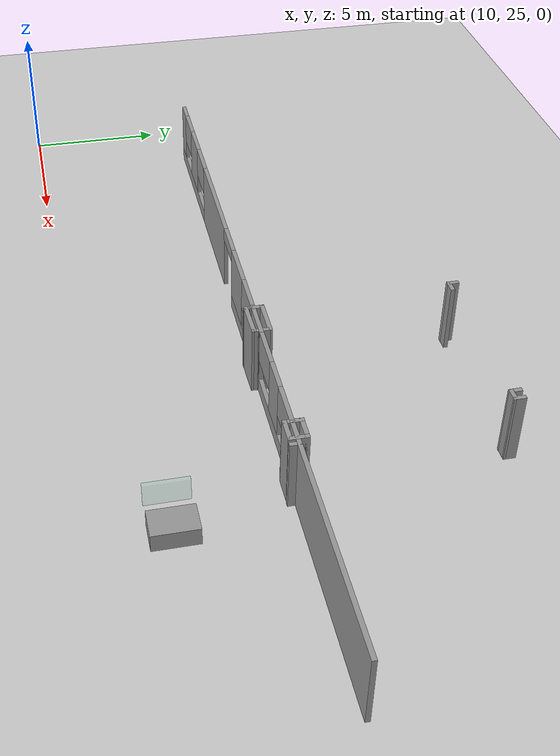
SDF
<sdf version="1.6">
 <world name="default">
  <model name="ground_plane">
   <static>1</static>
   <link name="link">
    <collision name="collision">
     <geometry><plane><normal>0 0 1</normal><size>100 100</size></plane></geometry>
     <surface><friction><ode><mu>100</mu><mu2>50</mu2></ode></friction></surface>
    </collision>
    <visual name="visual">
     <cast_shadows>0</cast_shadows>
     <geometry><plane><normal>0 0 1</normal><size>100 100</size></plane></geometry>
     <material>
      <script><uri>file://media/materials/scripts/gazebo.material</uri><name>Gazebo/Grey</name></script>
     </material>
    </visual>
   </link>
  </model>
  <model name="CVSSP">
   <pose>23.8714 24.094 0 0 -0 0</pose>
   <link name="Wall_19">
    <pose>2.41083 7.10891 0 0 -0 3.14159</pose>
    <visual name="Wall_19_Visual_0">
     <pose>-9.80896 0 1.25 0 -0 0</pose>
     <geometry><box><size>8.38208 0.15 2.5</size></box></geometry>
     <material>
      <script><uri>file://media/materials/scripts/gazebo.material</uri><name>Gazebo/Grey</name></script>
      <ambient>0.588235 0.588235 0.588235 1</ambient>
     </material>
    </visual>
    <collision name="Wall_19_Collision_0">
     <geometry><box><size>8.38208 0.15 2.5</size></box></geometry>
     <pose>-9.80896 0 1.25 0 -0 0</pose>
    </collision>
    <visual name="Wall_19_Visual_1">
     <pose>6.72902 0 1.25 0 -0 0</pose>
     <geometry><box><size>4.28675 0.15 2.5</size></box></geometry>
     <material>
      <script><uri>file://media/materials/scripts/gazebo.material</uri><name>Gazebo/Grey</name></script>
      <ambient>0.588235 0.588235 0.588235 1</ambient>
     </material>
    </visual>
    <collision name="Wall_19_Collision_1">
     <geometry><box><size>4.28675 0.15 2.5</size></box></geometry>
     <pose>6.72902 0 1.25 0 -0 0</pose>
    </collision>
    <visual name="Wall_19_Visual_2">
     <pose>-1.21771 0 0.25 0 -0 0</pose>
     <geometry><box><size>8.80043 0.15 0.5</size></box></geometry>
     <material>
      <script><uri>file://media/materials/scripts/gazebo.material</uri><name>Gazebo/Grey</name></script>
      <ambient>0.588235 0.588235 0.588235 1</ambient>
     </material>
    </visual>
    <collision name="Wall_19_Collision_2">
     <geometry><box><size>8.80043 0.15 0.5</size></box></geometry>
     <pose>-1.21771 0 0.25 0 -0 0</pose>
    </collision>
    <visual name="Wall_19_Visual_3">
     <pose>11.4362 0 0.25 0 -0 0</pose>
     <geometry><box><size>5.1276 0.15 0.5</size></box></geometry>
     <material>
      <script><uri>file://media/materials/scripts/gazebo.material</uri><name>Gazebo/Grey</name></script>
      <ambient>0.588235 0.588235 0.588235 1</ambient>
     </material>
    </visual>
    <collision name="Wall_19_Collision_3">
     <geometry><box><size>5.1276 0.15 0.5</size></box></geometry>
     <pose>11.4362 0 0.25 0 -0 0</pose>
    </collision>
    <visual name="Wall_19_Visual_4">
     <pose>-3.53944 0 1.5 0 -0 0</pose>
     <geometry><box><size>1.17771 0.15 2</size></box></geometry>
     <material>
      <script><uri>file://media/materials/scripts/gazebo.material</uri><name>Gazebo/Grey</name></script>
      <ambient>0.588235 0.588235 0.588235 1</ambient>
     </material>
    </visual>
    <collision name="Wall_19_Collision_4">
     <geometry><box><size>1.17771 0.15 2</size></box></geometry>
     <pose>-3.53944 0 1.5 0 -0 0</pose>
    </collision>
    <visual name="Wall_19_Visual_5">
     <pose>-0.741003 0 1.5 0 -0 0</pose>
     <geometry><box><size>1.46268 0.15 2</size></box></geometry>
     <material>
      <script><uri>file://media/materials/scripts/gazebo.material</uri><name>Gazebo/Grey</name></script>
      <ambient>0.588235 0.588235 0.588235 1</ambient>
     </material>
    </visual>
    <collision name="Wall_19_Collision_5">
     <geometry><box><size>1.46268 0.15 2</size></box></geometry>
     <pose>-0.741003 0 1.5 0 -0 0</pose>
    </collision>
    <visual name="Wall_19_Visual_6">
     <pose>2.29704 0 1.5 0 -0 0</pose>
     <geometry><box><size>1.77092 0.15 2</size></box></geometry>
     <material>
      <script><uri>file://media/materials/scripts/gazebo.material</uri><name>Gazebo/Grey</name></script>
      <ambient>0.588235 0.588235 0.588235 1</ambient>
     </material>
    </visual>
    <collision name="Wall_19_Collision_6">
     <geometry><box><size>1.77092 0.15 2</size></box></geometry>
     <pose>2.29704 0 1.5 0 -0 0</pose>
    </collision>
    <visual name="Wall_19_Visual_7">
     <pose>2.29704 0 1.5 0 -0 0</pose>
     <geometry><box><size>1.77092 0.15 2</size></box></geometry>
     <material>
      <script><uri>file://media/materials/scripts/gazebo.material</uri><name>Gazebo/Grey</name></script>
      <ambient>0.588235 0.588235 0.588235 1</ambient>
     </material>
    </visual>
    <collision name="Wall_19_Collision_7">
     <geometry><box><size>1.77092 0.15 2</size></box></geometry>
     <pose>2.29704 0 1.5 0 -0 0</pose>
    </collision>
    <visual name="Wall_19_Visual_8">
     <pose>11.0786 0 1.5 0 -0 0</pose>
     <geometry><box><size>1.46509 0.15 2</size></box></geometry>
     <material>
      <script><uri>file://media/materials/scripts/gazebo.material</uri><name>Gazebo/Grey</name></script>
      <ambient>0.588235 0.588235 0.588235 1</ambient>
     </material>
    </visual>
    <collision name="Wall_19_Collision_8">
     <geometry><box><size>1.46509 0.15 2</size></box></geometry>
     <pose>11.0786 0 1.5 0 -0 0</pose>
    </collision>
    <visual name="Wall_19_Visual_9">
     <pose>13.5916 0 1.5 0 -0 0</pose>
     <geometry><box><size>0.816793 0.15 2</size></box></geometry>
     <material>
      <script><uri>file://media/materials/scripts/gazebo.material</uri><name>Gazebo/Grey</name></script>
      <ambient>0.588235 0.588235 0.588235 1</ambient>
     </material>
    </visual>
    <collision name="Wall_19_Collision_9">
     <geometry><box><size>0.816793 0.15 2</size></box></geometry>
     <pose>13.5916 0 1.5 0 -0 0</pose>
    </collision>
    <visual name="Wall_19_Visual_10">
     <pose>-4.87311 0 1.9 0 -0 0</pose>
     <geometry><box><size>1.48963 0.15 1.2</size></box></geometry>
     <material>
      <script><uri>file://media/materials/scripts/gazebo.material</uri><name>Gazebo/Grey</name></script>
      <ambient>0.588235 0.588235 0.588235 1</ambient>
     </material>
    </visual>
    <collision name="Wall_19_Collision_10">
     <geometry><box><size>1.48963 0.15 1.2</size></box></geometry>
     <pose>-4.87311 0 1.9 0 -0 0</pose>
    </collision>
    <visual name="Wall_19_Visual_11">
     <pose>9.60921 0 1.9 0 -0 0</pose>
     <geometry><box><size>1.47362 0.15 1.2</size></box></geometry>
     <material>
      <script><uri>file://media/materials/scripts/gazebo.material</uri><name>Gazebo/Grey</name></script>
      <ambient>0.588235 0.588235 0.588235 1</ambient>
     </material>
    </visual>
    <collision name="Wall_19_Collision_11">
     <geometry><box><size>1.47362 0.15 1.2</size></box></geometry>
     <pose>9.60921 0 1.9 0 -0 0</pose>
    </collision>
    <visual name="Wall_19_Visual_12">
     <pose>-2.21146 0 1.9 0 -0 0</pose>
     <geometry><box><size>1.47823 0.15 1.2</size></box></geometry>
     <material>
      <script><uri>file://media/materials/scripts/gazebo.material</uri><name>Gazebo/Grey</name></script>
      <ambient>0.588235 0.588235 0.588235 1</ambient>
     </material>
    </visual>
    <collision name="Wall_19_Collision_12">
     <geometry><box><size>1.47823 0.15 1.2</size></box></geometry>
     <pose>-2.21146 0 1.9 0 -0 0</pose>
    </collision>
    <visual name="Wall_19_Visual_13">
     <pose>0.700959 0 1.9 0 -0 0</pose>
     <geometry><box><size>1.42124 0.15 1.2</size></box></geometry>
     <material>
      <script><uri>file://media/materials/scripts/gazebo.material</uri><name>Gazebo/Grey</name></script>
      <ambient>0.588235 0.588235 0.588235 1</ambient>
     </material>
    </visual>
    <collision name="Wall_19_Collision_13">
     <geometry><box><size>1.42124 0.15 1.2</size></box></geometry>
     <pose>0.700959 0 1.9 0 -0 0</pose>
    </collision>
    <visual name="Wall_19_Visual_14">
     <pose>12.4972 0 1.9 0 -0 0</pose>
     <geometry><box><size>1.3721 0.15 1.2</size></box></geometry>
     <material>
      <script><uri>file://media/materials/scripts/gazebo.material</uri><name>Gazebo/Grey</name></script>
      <ambient>0.588235 0.588235 0.588235 1</ambient>
     </material>
    </visual>
    <collision name="Wall_19_Collision_14">
     <geometry><box><size>1.3721 0.15 1.2</size></box></geometry>
     <pose>12.4972 0 1.9 0 -0 0</pose>
    </collision>
    <visual name="Wall_19_Visual_15">
     <pose>3.88408 0 2.25 0 -0 0</pose>
     <geometry><box><size>1.40314 0.15 0.5</size></box></geometry>
     <material>
      <script><uri>file://media/materials/scripts/gazebo.material</uri><name>Gazebo/Grey</name></script>
      <ambient>0.588235 0.588235 0.588235 1</ambient>
     </material>
    </visual>
    <collision name="Wall_19_Collision_15">
     <geometry><box><size>1.40314 0.15 0.5</size></box></geometry>
     <pose>3.88408 0 2.25 0 -0 0</pose>
    </collision>
    <visual name="Wall_19_Visual_16">
     <pose>3.88408 0 2.25 0 -0 0</pose>
     <geometry><box><size>1.40314 0.15 0.5</size></box></geometry>
     <material>
      <script><uri>file://media/materials/scripts/gazebo.material</uri><name>Gazebo/Grey</name></script>
      <ambient>0.588235 0.588235 0.588235 1</ambient>
     </material>
    </visual>
    <collision name="Wall_19_Collision_16">
     <geometry><box><size>1.40314 0.15 0.5</size></box></geometry>
     <pose>3.88408 0 2.25 0 -0 0</pose>
    </collision>
   </link>
   <link name="Wall_32">
    <collision name="Wall_32_Collision">
     <geometry><box><size>0.5 0.15 2.5</size></box></geometry>
     <pose>0 0 1.25 0 -0 0</pose>
    </collision>
    <visual name="Wall_32_Visual">
     <pose>0 0 1.25 0 -0 0</pose>
     <geometry><box><size>0.5 0.15 2.5</size></box></geometry>
     <material>
      <script><uri>file://media/materials/scripts/gazebo.material</uri><name>Gazebo/Grey</name></script>
      <ambient>1 1 1 1</ambient>
     </material>
    </visual>
    <pose>2.55582 7.23766 0 0 -0 1.5708</pose>
   </link>
   <link name="Wall_33">
    <collision name="Wall_33_Collision">
     <geometry><box><size>1.35002 0.15 2.5</size></box></geometry>
     <pose>0 0 1.25 0 -0 0</pose>
    </collision>
    <visual name="Wall_33_Visual">
     <pose>0 0 1.25 0 -0 0</pose>
     <geometry><box><size>1.35002 0.15 2.5</size></box></geometry>
     <material>
      <script><uri>file://media/materials/scripts/gazebo.material</uri><name>Gazebo/Grey</name></script>
      <ambient>1 1 1 1</ambient>
     </material>
    </visual>
    <pose>3.15583 7.41134 0 0 0 -0.002197</pose>
   </link>
   <link name="Wall_34">
    <collision name="Wall_34_Collision">
     <geometry><box><size>0.477081 0.15 2.5</size></box></geometry>
     <pose>0 0 1.25 0 -0 0</pose>
    </collision>
    <visual name="Wall_34_Visual">
     <pose>0 0 1.25 0 -0 0</pose>
     <geometry><box><size>0.477081 0.15 2.5</size></box></geometry>
     <material>
      <script><uri>file://media/materials/scripts/gazebo.material</uri><name>Gazebo/Grey</name></script>
      <ambient>1 1 1 1</ambient>
     </material>
    </visual>
    <pose>3.75756 7.24649 0 0 0 -1.56021</pose>
   </link>
   <link name="Wall_35">
    <collision name="Wall_35_Collision">
     <geometry><box><size>0.362174 0.15 2.5</size></box></geometry>
     <pose>0 0 1.25 0 -0 0</pose>
    </collision>
    <visual name="Wall_35_Visual">
     <pose>0 0 1.25 0 -0 0</pose>
     <geometry><box><size>0.362174 0.15 2.5</size></box></geometry>
     <material>
      <script><uri>file://media/materials/scripts/gazebo.material</uri><name>Gazebo/Grey</name></script>
      <ambient>1 1 1 1</ambient>
     </material>
    </visual>
    <pose>3.75517 6.99018 0 0 0 -1.6097</pose>
   </link>
   <link name="Wall_36">
    <collision name="Wall_36_Collision">
     <geometry><box><size>1.34683 0.15 2.5</size></box></geometry>
     <pose>0 0 1.25 0 -0 0</pose>
    </collision>
    <visual name="Wall_36_Visual">
     <pose>0 0 1.25 0 -0 0</pose>
     <geometry><box><size>1.34683 0.15 2.5</size></box></geometry>
     <material>
      <script><uri>file://media/materials/scripts/gazebo.material</uri><name>Gazebo/Grey</name></script>
      <ambient>1 1 1 1</ambient>
     </material>
    </visual>
    <pose>3.15268 6.87142 0 0 0 -3.1286</pose>
   </link>
   <link name="Wall_37">
    <collision name="Wall_37_Collision">
     <geometry><box><size>0.15 0.15 2.5</size></box></geometry>
     <pose>0 0 1.25 0 -0 0</pose>
    </collision>
    <visual name="Wall_37_Visual">
     <pose>0 0 1.25 0 -0 0</pose>
     <geometry><box><size>0.15 0.15 2.5</size></box></geometry>
     <material>
      <script><uri>file://media/materials/scripts/gazebo.material</uri><name>Gazebo/Grey</name></script>
      <ambient>1 1 1 1</ambient>
     </material>
    </visual>
    <pose>2.55431 6.86365 0 0 -0 0</pose>
   </link>
   <link name="Wall_38">
    <collision name="Wall_38_Collision">
     <geometry><box><size>0.258168 0.15 2.5</size></box></geometry>
     <pose>0 0 1.25 0 -0 0</pose>
    </collision>
    <visual name="Wall_38_Visual">
     <pose>0 0 1.25 0 -0 0</pose>
     <geometry><box><size>0.258168 0.15 2.5</size></box></geometry>
     <material>
      <script><uri>file://media/materials/scripts/gazebo.material</uri><name>Gazebo/Grey</name></script>
      <ambient>1 1 1 1</ambient>
     </material>
    </visual>
    <pose>2.55648 6.91769 0 0 -0 1.61078</pose>
   </link>
   <link name="Wall_40">
    <collision name="Wall_40_Collision">
     <geometry><box><size>0.82 0.15 2.5</size></box></geometry>
     <pose>0 0 1.25 0 -0 0</pose>
    </collision>
    <visual name="Wall_40_Visual">
     <pose>0 0 1.25 0 -0 0</pose>
     <geometry><box><size>0.82 0.15 2.5</size></box></geometry>
     <material>
      <script><uri>file://media/materials/scripts/gazebo.material</uri><name>Gazebo/Grey</name></script>
      <ambient>1 1 1 1</ambient>
     </material>
    </visual>
    <pose>8.4225 7.39869 0 0 -0 0</pose>
   </link>
   <link name="Wall_41">
    <collision name="Wall_41_Collision">
     <geometry><box><size>0.67 0.15 2.5</size></box></geometry>
     <pose>0 0 1.25 0 -0 0</pose>
    </collision>
    <visual name="Wall_41_Visual">
     <pose>0 0 1.25 0 -0 0</pose>
     <geometry><box><size>0.67 0.15 2.5</size></box></geometry>
     <material>
      <script><uri>file://media/materials/scripts/gazebo.material</uri><name>Gazebo/Grey</name></script>
      <ambient>1 1 1 1</ambient>
     </material>
    </visual>
    <pose>8.7575 7.13868 0 0 0 -1.5708</pose>
   </link>
   <link name="Wall_42">
    <collision name="Wall_42_Collision">
     <geometry><box><size>0.84 0.15 2.5</size></box></geometry>
     <pose>0 0 1.25 0 -0 0</pose>
    </collision>
    <visual name="Wall_42_Visual">
     <pose>0 0 1.25 0 -0 0</pose>
     <geometry><box><size>0.84 0.15 2.5</size></box></geometry>
     <material>
      <script><uri>file://media/materials/scripts/gazebo.material</uri><name>Gazebo/Grey</name></script>
      <ambient>1 1 1 1</ambient>
     </material>
    </visual>
    <pose>8.4125 6.87868 0 0 -0 3.14159</pose>
   </link>
   <link name="Wall_43">
    <collision name="Wall_43_Collision">
     <geometry><box><size>0.68 0.15 2.5</size></box></geometry>
     <pose>0 0 1.25 0 -0 0</pose>
    </collision>
    <visual name="Wall_43_Visual">
     <pose>0 0 1.25 0 -0 0</pose>
     <geometry><box><size>0.68 0.15 2.5</size></box></geometry>
     <material>
      <script><uri>file://media/materials/scripts/gazebo.material</uri><name>Gazebo/Grey</name></script>
      <ambient>1 1 1 1</ambient>
     </material>
    </visual>
    <pose>8.0675 7.14368 0 0 -0 1.5708</pose>
   </link>
   <link name="Wall_45">
    <collision name="Wall_45_Collision">
     <geometry><box><size>0.380217 0.15 2.5</size></box></geometry>
     <pose>0 0 1.25 0 -0 0</pose>
    </collision>
    <visual name="Wall_45_Visual">
     <pose>0 0 1.25 0 -0 0</pose>
     <geometry><box><size>0.380217 0.15 2.5</size></box></geometry>
     <material>
      <script><uri>file://media/materials/scripts/gazebo.material</uri><name>Gazebo/Grey</name></script>
      <ambient>1 1 1 1</ambient>
     </material>
    </visual>
    <pose>8.9975 6.98369 0 0 0 -1.5708</pose>
   </link>
   <link name="Wall_608">
    <collision name="Wall_608_Collision">
     <geometry><box><size>0.414583 0.15 2.5</size></box></geometry>
     <pose>0 0 1.25 0 -0 0</pose>
    </collision>
    <visual name="Wall_608_Visual">
     <pose>0 0 1.25 0 -0 0</pose>
     <geometry><box><size>0.414583 0.15 2.5</size></box></geometry>
     <material>
      <script><uri>file://media/materials/scripts/gazebo.material</uri><name>Gazebo/Grey</name></script>
      <ambient>1 1 1 1</ambient>
     </material>
    </visual>
    <pose>8.40868 14.021 0 0 0 -1.5833</pose>
   </link>
   <link name="Wall_609">
    <collision name="Wall_609_Collision">
     <geometry><box><size>0.477386 0.15 2.5</size></box></geometry>
     <pose>0 0 1.25 0 -0 0</pose>
    </collision>
    <visual name="Wall_609_Visual">
     <pose>0 0 1.25 0 -0 0</pose>
     <geometry><box><size>0.477386 0.15 2.5</size></box></geometry>
     <material>
      <script><uri>file://media/materials/scripts/gazebo.material</uri><name>Gazebo/Grey</name></script>
      <ambient>1 1 1 1</ambient>
     </material>
    </visual>
    <pose>8.24336 13.8871 0 0 0 -3.13149</pose>
   </link>
   <link name="Wall_610">
    <collision name="Wall_610_Collision">
     <geometry><box><size>0.417827 0.15 2.5</size></box></geometry>
     <pose>0 0 1.25 0 -0 0</pose>
    </collision>
    <visual name="Wall_610_Visual">
     <pose>0 0 1.25 0 -0 0</pose>
     <geometry><box><size>0.417827 0.15 2.5</size></box></geometry>
     <material>
      <script><uri>file://media/materials/scripts/gazebo.material</uri><name>Gazebo/Grey</name></script>
      <ambient>1 1 1 1</ambient>
     </material>
    </visual>
    <pose>8.0764 14.0193 0 0 -0 1.59548</pose>
   </link>
   <link name="Wall_615">
    <collision name="Wall_615_Collision">
     <geometry><box><size>0.479662 0.15 2.5</size></box></geometry>
     <pose>0 0 1.25 0 -0 0</pose>
    </collision>
    <visual name="Wall_615_Visual">
     <pose>0 0 1.25 0 -0 0</pose>
     <geometry><box><size>0.479662 0.15 2.5</size></box></geometry>
     <material>
      <script><uri>file://media/materials/scripts/gazebo.material</uri><name>Gazebo/Grey</name></script>
      <ambient>1 1 1 1</ambient>
     </material>
    </visual>
    <pose>2.70247 13.8861 0 0 -0 3.14159</pose>
   </link>
   <link name="Wall_616">
    <collision name="Wall_616_Collision">
     <geometry><box><size>0.416065 0.15 2.5</size></box></geometry>
     <pose>0 0 1.25 0 -0 0</pose>
    </collision>
    <visual name="Wall_616_Visual">
     <pose>0 0 1.25 0 -0 0</pose>
     <geometry><box><size>0.416065 0.15 2.5</size></box></geometry>
     <material>
      <script><uri>file://media/materials/scripts/gazebo.material</uri><name>Gazebo/Grey</name></script>
      <ambient>1 1 1 1</ambient>
     </material>
    </visual>
    <pose>2.53766 14.0191 0 0 -0 1.5708</pose>
   </link>
   <static>1</static>
  </model>
  <model name="window_0_clone_clone_clone">
   <link name="link">
    <inertial>
     <mass>0.185318</mass>
     <inertia>
      <ixx>0.0157792</ixx>
      <ixy>0</ixy>
      <ixz>0</ixz>
      <iyy>0.0398142</iyy>
      <iyz>0</iyz>
      <izz>0.0247071</izz>
     </inertia>
    </inertial>
    <visual name="visual">
     <geometry><box><size>1.44901 0.147514 0.798588</size></box></geometry>
     <material>
      <script><name>Gazebo/Grey</name><uri>file://media/materials/scripts/gazebo.material</uri></script>
      <shader type="pixel"><normal_map>__default__</normal_map></shader>
      <ambient>0.435 0.796 0.675 1</ambient>
      <diffuse>0.7 0.7 0.7 1</diffuse>
      <specular>0.01 0.01 0.01 1</specular>
      <emissive>0 0 0 1</emissive>
     </material>
     <transparency>0.8</transparency>
    </visual>
    <collision name="collision">
     <geometry><box><size>1.44901 0.147514 0.798588</size></box></geometry>
     <surface>
      <friction>
       <ode><mu>1</mu><mu2>1</mu2><fdir1>0 0 0</fdir1><slip1>0</slip1><slip2>0</slip2></ode>
       <torsional>
        <coefficient>1</coefficient>
        <patch_radius>0</patch_radius>
        <surface_radius>0</surface_radius>
        <use_patch_radius>1</use_patch_radius>
        <ode><slip>0</slip></ode>
       </torsional>
      </friction>
      <bounce><restitution_coefficient>0</restitution_coefficient><threshold>1e+06</threshold></bounce>
      <contact>
       <collide_without_contact>0</collide_without_contact>
       <collide_without_contact_bitmask>1</collide_without_contact_bitmask>
       <collide_bitmask>1</collide_bitmask>
       <ode>
        <soft_cfm>0</soft_cfm>
        <soft_erp>0.2</soft_erp>
        <kp>1e+13</kp>
        <kd>1</kd>
        <max_vel>0.01</max_vel>
        <min_depth>0</min_depth>
       </ode>
       <bullet>
        <split_impulse>1</split_impulse>
        <split_impulse_penetration_threshold>-0.01</split_impulse_penetration_threshold>
        <soft_cfm>0</soft_cfm>
        <soft_erp>0.2</soft_erp>
        <kp>1e+13</kp>
        <kd>1</kd>
       </bullet>
      </contact>
     </surface>
    </collision>
   </link>
   <static>1</static>
   <pose>32.4676 27.3628 0.904256 0 -0 1.57547</pose>
  </model>
  <model name="ply_wood_under_box_clone_0">
   <link name="link">
    <inertial>
     <mass>1</mass>
     <inertia>
      <ixx>0.166667</ixx>
      <ixy>0</ixy>
      <ixz>0</ixz>
      <iyy>0.166667</iyy>
      <iyz>0</iyz>
      <izz>0.166667</izz>
     </inertia>
    </inertial>
    <gravity>0</gravity>
    <visual name="visual">
     <geometry><box><size>1 1.50222 0.628617</size></box></geometry>
     <material>
      <script><name>Gazebo/Grey</name><uri>file://media/materials/scripts/gazebo.material</uri></script>
      <shader type="pixel"><normal_map>__default__</normal_map></shader>
     </material>
    </visual>
    <collision name="collision">
     <geometry><box><size>1 1.50222 0.628617</size></box></geometry>
     <surface>
      <friction>
       <ode><mu>1</mu><mu2>1</mu2><fdir1>0 0 0</fdir1><slip1>0</slip1><slip2>0</slip2></ode>
       <torsional>
        <coefficient>1</coefficient>
        <patch_radius>0</patch_radius>
        <surface_radius>0</surface_radius>
        <use_patch_radius>1</use_patch_radius>
        <ode><slip>0</slip></ode>
       </torsional>
      </friction>
      <bounce><restitution_coefficient>0</restitution_coefficient><threshold>1e+06</threshold></bounce>
      <contact>
       <collide_without_contact>0</collide_without_contact>
       <collide_without_contact_bitmask>1</collide_without_contact_bitmask>
       <collide_bitmask>1</collide_bitmask>
       <ode>
        <soft_cfm>0</soft_cfm>
        <soft_erp>0.2</soft_erp>
        <kp>1e+13</kp>
        <kd>1</kd>
        <max_vel>0.01</max_vel>
        <min_depth>0</min_depth>
       </ode>
       <bullet>
        <split_impulse>1</split_impulse>
        <split_impulse_penetration_threshold>-0.01</split_impulse_penetration_threshold>
        <soft_cfm>0</soft_cfm>
        <soft_erp>0.2</soft_erp>
        <kp>1e+13</kp>
        <kd>1</kd>
       </bullet>
      </contact>
     </surface>
    </collision>
   </link>
   <static>1</static>
   <pose>33.3982 27.4106 0.362453 0 -0 0</pose>
  </model>
 </world>
</sdf>
